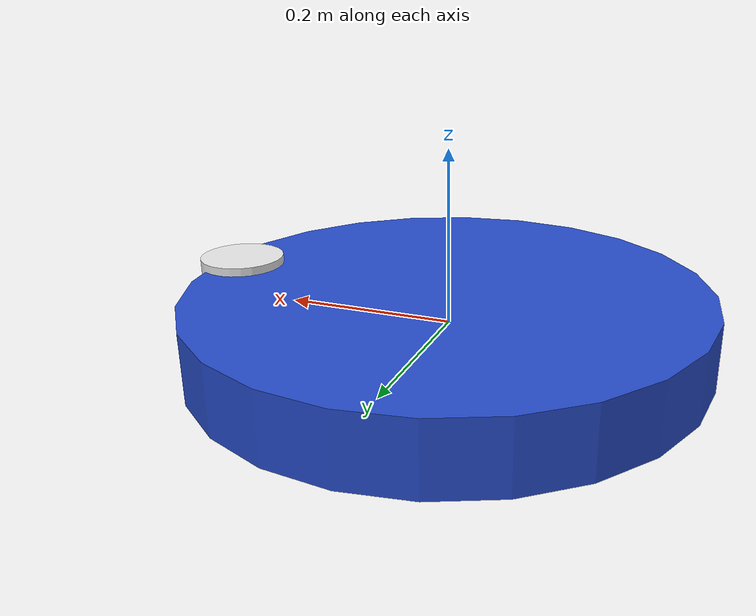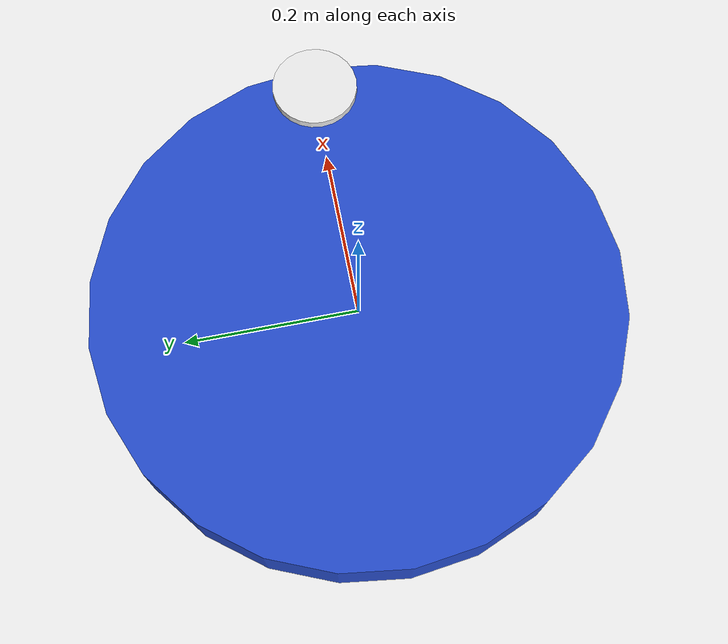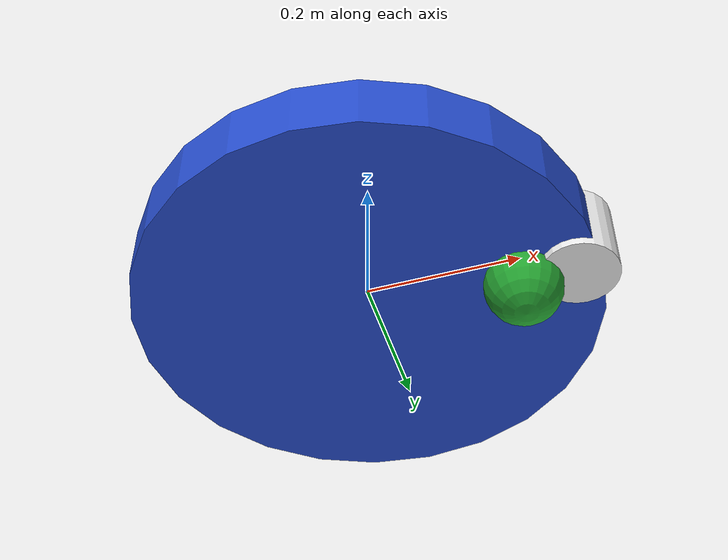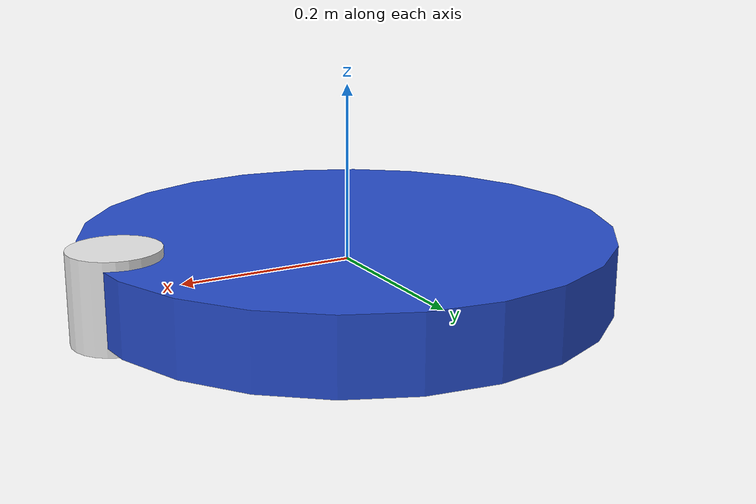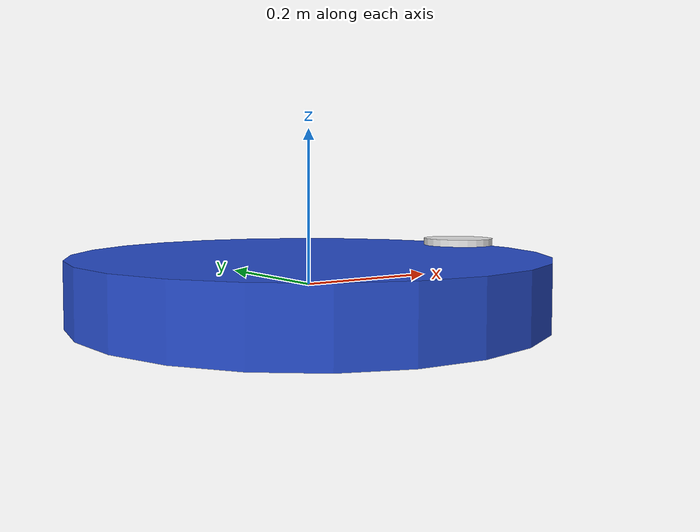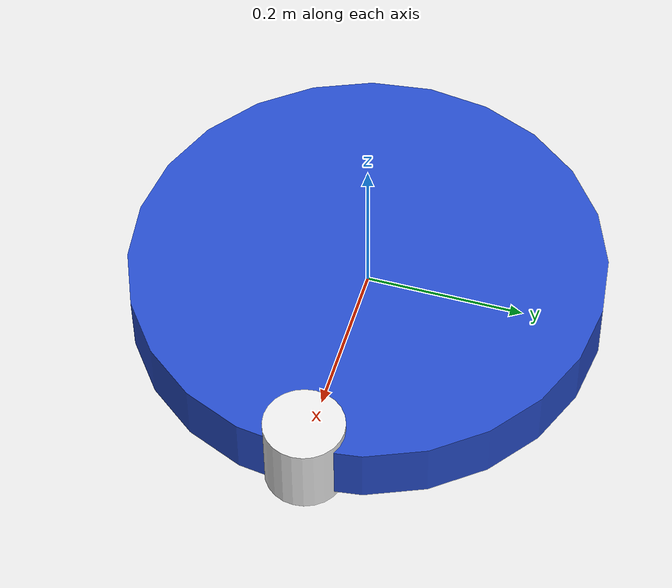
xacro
<?xml version="1.0" ?>

<robot name="robot" xmlns:xacro="https://www.ros.org/wiki/xacro" >

  <!-- Include the Xacro files -->
  <xacro:include filename="$(find robot_description)/urdf/materials.xacro" />
  <xacro:include filename="$(find robot_description)/urdf/gazebo.xacro" />
  <xacro:include filename="$(find robot_description)/urdf/macro.xacro" />

  <!-- chassis definition -->
  <link name="link_chassis">
    <!-- pose and inertial -->
    <pose>0 0 0.1 0 0 0</pose>

    <inertial>
      <mass value="5"/>
      <origin rpy="0 0 0" xyz="0 0 0.1"/>
      <inertia ixx="0.0395416666667" ixy="0" ixz="0" iyy="0.106208333333" iyz="0" izz="0.106208333333"/>
    </inertial>

    <collision name="collision_chassis">
      <geometry>
        <cylinder length="0.08" radius="0.3"/>
      </geometry>
    </collision>

    <visual>
      <origin rpy="0 0 0" xyz="0 0 0"/>
      <geometry>
        <cylinder length="0.08" radius="0.3"/>
      </geometry>
      <material name="blue"/>
    </visual>

    <!-- caster front -->
    <collision name="caster_front_collision">
      <origin rpy=" 0 0 0" xyz="0.35 0 -0.05"/>
      <geometry>
        <sphere radius="0.05"/>
      </geometry>
      <surface>
        <friction>
          <ode>
            <mu>0</mu>
            <mu2>0</mu2>
            <slip1>1.0</slip1>
            <slip2>1.0</slip2>
          </ode>
        </friction>
      </surface>
    </collision>
    <visual name="caster_front_visual">
      <origin rpy=" 0 0 0" xyz="0.2 0 -0.05"/>
      <geometry>
        <sphere radius="0.05"/>
      </geometry>
    </visual>
  </link>

  <!-- Link for laser -->
  <link name="sensor_laser">
    <inertial>
      <origin xyz="0 0 0" rpy="0 0 0" />
      <mass value="4" />
      <xacro:cylinder_inertia mass="1" r="0.05" l="0.1" />
    </inertial>

    <visual>
      <origin xyz="0 0 0" rpy="0 0 0" />
      <geometry>
        <cylinder radius="0.05" length="0.1"/>
      </geometry>
      <material name="white" />
      <material name="laserLight" />
    </visual>

    <collision>
      <origin xyz="0 0 0" rpy="0 0 0"/>
      <geometry>
        <cylinder radius="0.05" length="0.1"/>
      </geometry>
      <material name="collisionLaser" />
    </collision>
  </link>

  <!-- Joint for laser -->
  <joint name="joint_sensor_laser" type="fixed">
    <origin xyz="0.27 0 0" rpy="0 0 0"/>
    <parent link="link_chassis"/>
    <child link="sensor_laser"/>
  </joint>

  <!-- Camera -->
  <link name="head_camera">
    <inertial>
      <origin rpy="0 0 0" xyz="0 0 0"/>
      <mass value="0.0001"/>
      <inertia ixx="1e-08" ixy="0" ixz="0" iyy="1e-08" iyz="0" izz="1e-08"/>
    </inertial>
  </link>

  <joint name="head_camera" type="fixed">
    <origin rpy="0.75057 0 1.57079632679" xyz="0.12839 0 0.06368"/>
    <parent link="link_chassis"/>
    <child link="head_camera"/>
  </joint>

  <!-- Right Wheel Link -->
  <xacro:link_wheel name="link_right_wheel" />

  <!--   Joint for right wheel  -->
  <xacro:joint_wheel name="joint_right_wheel"  child="link_right_wheel"  origin_xyz="-0.05 0.3 0"  />

  <!-- Left Wheel link -->
  <xacro:link_wheel name="link_left_wheel" />

  <!--   Joint for left wheel  -->
  <xacro:joint_wheel name="joint_left_wheel"   child="link_left_wheel"   origin_xyz="-0.05 -0.3 0"  />

</robot>

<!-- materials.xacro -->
<robot name="robot" xmlns:xacro="http://www.ros.org/wiki/xacro" >
  <material name="laserLight">
    <lighting>1</lighting>
    <ambient>0.3 0.3 0.3 1</ambient>
    <diffuse>0.7 0.7 0.7 1</diffuse>
    <specular>0.01 0.01 0.01 1</specular>
    <emissive>0 0 0 1</emissive>
  </material>
  <material name="collisionLaser">
    <laser_retro>0</laser_retro>
    <max_contacts>10</max_contacts>
  </material>
</robot>

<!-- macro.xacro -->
<robot xmlns:xacro="http://www.ros.org/wiki/xacro">
  <xacro:macro name="link_wheel" params="name">
    <link name="${name}">
      <inertial>
        <mass value="0.2"/>
        <origin rpy="0 1.5707 1.5707" xyz="0 0 0"/>
        <inertia ixx="0.000526666666667" ixy="0" ixz="0" iyy="0.000526666666667" iyz="0" izz="0.001"/>
      </inertial>
    </link>
  </xacro:macro>

  <xacro:macro name="joint_wheel" params="name child origin_xyz">
    <joint name="${name}" type="continuous">
      <origin rpy="0 0 0" xyz="${origin_xyz}"/>
      <child link="${child}"/>
      <parent link="link_chassis"/>
      <axis rpy="0 0 0" xyz="0 1 0"/>
      <limit effort="10000" velocity="1000"/>
      <joint_properties damping="1.0" friction="1.0"/>
    </joint>
  </xacro:macro>

</robot>
